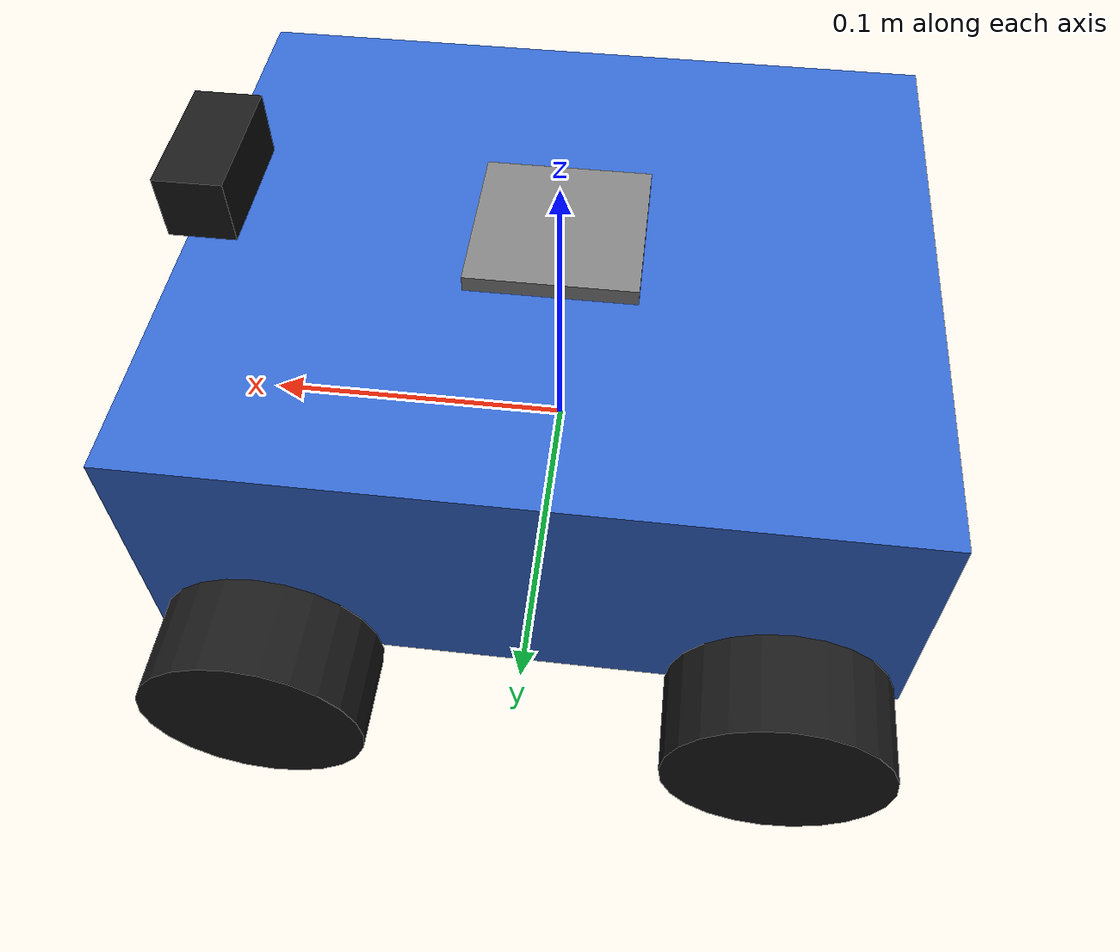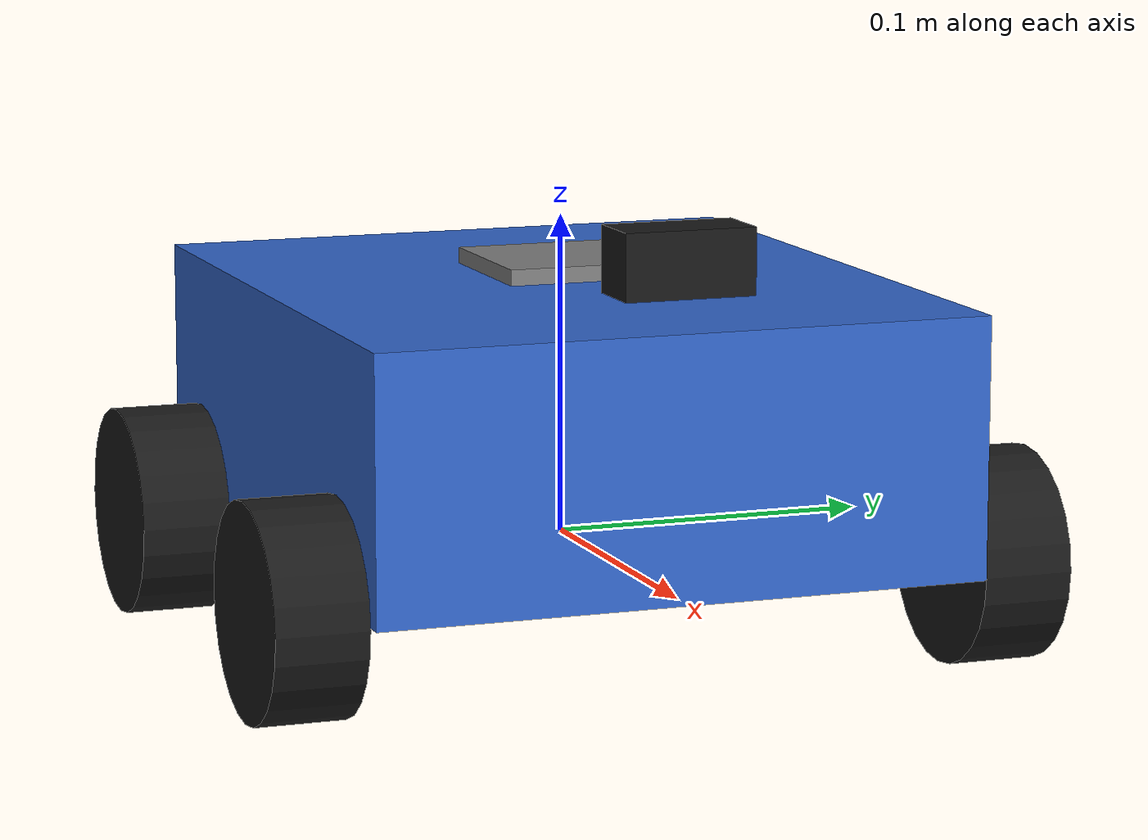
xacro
<?xml version="1.0"?>
<!--
  robot.xacro  —  HiWonder MentorPi Pro rover
  Simple box model with 4 wheels.
  Dimensions are approximate for the MentorPi Pro (220 × 190 × 80 mm chassis).
-->
<robot name="mentorpi" xmlns:xacro="http://www.ros.org/wiki/xacro">

  <xacro:arg name="prefix" default="" />

  <!--  Materials                                                    -->
  <material name="black">
    <color rgba="0.1 0.1 0.1 1.0"/>
  </material>
  <material name="grey">
    <color rgba="0.5 0.5 0.5 1.0"/>
  </material>
  <material name="blue">
    <color rgba="0.2 0.4 0.8 1.0"/>
  </material>

  <!--  Constants                                                    -->
  <xacro:property name="base_length"   value="0.220"/>
  <xacro:property name="base_width"    value="0.190"/>
  <xacro:property name="base_height"   value="0.080"/>
  <xacro:property name="base_mass"     value="2.0"/>

  <xacro:property name="wheel_radius"  value="0.033"/>
  <xacro:property name="wheel_width"   value="0.028"/>
  <xacro:property name="wheel_mass"    value="0.15"/>

  <xacro:property name="wheel_x"       value="0.075"/>  <!-- half wheelbase -->
  <xacro:property name="wheel_y"       value="0.110"/>  <!-- half track -->
  <xacro:property name="wheel_z"       value="0.0"/>

  <!--  Base link                                                    -->
  <link name="$(arg prefix)base_link">
    <visual>
      <origin xyz="0 0 ${base_height/2}" rpy="0 0 0"/>
      <geometry>
        <box size="${base_length} ${base_width} ${base_height}"/>
      </geometry>
      <material name="blue"/>
    </visual>
    <collision>
      <origin xyz="0 0 ${base_height/2}" rpy="0 0 0"/>
      <geometry>
        <box size="${base_length} ${base_width} ${base_height}"/>
      </geometry>
    </collision>
    <inertial>
      <origin xyz="0 0 ${base_height/2}" rpy="0 0 0"/>
      <mass value="${base_mass}"/>
      <inertia
        ixx="${base_mass*(base_width*base_width + base_height*base_height)/12.0}"
        ixy="0" ixz="0"
        iyy="${base_mass*(base_length*base_length + base_height*base_height)/12.0}"
        iyz="0"
        izz="${base_mass*(base_length*base_length + base_width*base_width)/12.0}"/>
    </inertial>
  </link>

  <!--  Wheel macro                                                  -->
  <xacro:macro name="wheel" params="prefix name x y">
    <link name="${prefix}${name}">
      <visual>
        <origin xyz="0 0 0" rpy="${pi/2} 0 0"/>
        <geometry>
          <cylinder length="${wheel_width}" radius="${wheel_radius}"/>
        </geometry>
        <material name="black"/>
      </visual>
      <collision>
        <origin xyz="0 0 0" rpy="${pi/2} 0 0"/>
        <geometry>
          <cylinder length="${wheel_width}" radius="${wheel_radius}"/>
        </geometry>
      </collision>
      <inertial>
        <mass value="${wheel_mass}"/>
        <inertia
          ixx="${wheel_mass*(3*wheel_radius*wheel_radius + wheel_width*wheel_width)/12.0}"
          ixy="0" ixz="0"
          iyy="${wheel_mass*wheel_radius*wheel_radius/2.0}"
          iyz="0"
          izz="${wheel_mass*(3*wheel_radius*wheel_radius + wheel_width*wheel_width)/12.0}"/>
      </inertial>
    </link>
    <joint name="${prefix}${name}_joint" type="continuous">
      <parent link="${prefix}base_link"/>
      <child  link="${prefix}${name}"/>
      <origin xyz="${x} ${y} 0" rpy="0 0 0"/>
      <axis xyz="0 1 0"/>
    </joint>
  </xacro:macro>

  <xacro:wheel prefix="$(arg prefix)" name="front_left_wheel"  x="${wheel_x}"  y="${wheel_y}"/>
  <xacro:wheel prefix="$(arg prefix)" name="front_right_wheel" x="${wheel_x}"  y="${-wheel_y}"/>
  <xacro:wheel prefix="$(arg prefix)" name="rear_left_wheel"   x="${-wheel_x}" y="${wheel_y}"/>
  <xacro:wheel prefix="$(arg prefix)" name="rear_right_wheel"  x="${-wheel_x}" y="${-wheel_y}"/>

  <!--  IMU link                                                     -->
  <link name="$(arg prefix)imu_link">
    <visual>
      <geometry><box size="0.01 0.01 0.005"/></geometry>
      <material name="grey"/>
    </visual>
  </link>
  <joint name="$(arg prefix)imu_joint" type="fixed">
    <parent link="$(arg prefix)base_link"/>
    <child  link="$(arg prefix)imu_link"/>
    <origin xyz="0 0 ${base_height}" rpy="0 0 0"/>
  </joint>

  <!--  Interface link (where BotBrain mounts on top of chassis)    -->
  <link name="$(arg prefix)interface_link">
    <visual>
      <geometry><box size="0.05 0.05 0.005"/></geometry>
      <material name="grey"/>
    </visual>
  </link>
  <joint name="$(arg prefix)interface_joint" type="fixed">
    <parent link="$(arg prefix)base_link"/>
    <child  link="$(arg prefix)interface_link"/>
    <!-- BotBrain sits on top-centre of the chassis -->
    <origin xyz="0.0 0.0 ${base_height + 0.005}" rpy="0 0 0"/>
  </joint>

  <!--  Camera link (front-facing USB camera)                       -->
  <link name="$(arg prefix)front_camera_link">
    <visual>
      <geometry><box size="0.02 0.04 0.02"/></geometry>
      <material name="black"/>
    </visual>
  </link>
  <joint name="$(arg prefix)front_camera_joint" type="fixed">
    <parent link="$(arg prefix)base_link"/>
    <child  link="$(arg prefix)front_camera_link"/>
    <!-- Camera mounts on the front-top edge, pointing forward -->
    <origin xyz="${base_length/2 - 0.01} 0.0 ${base_height + 0.02}" rpy="0 0 0"/>
  </joint>

</robot>
